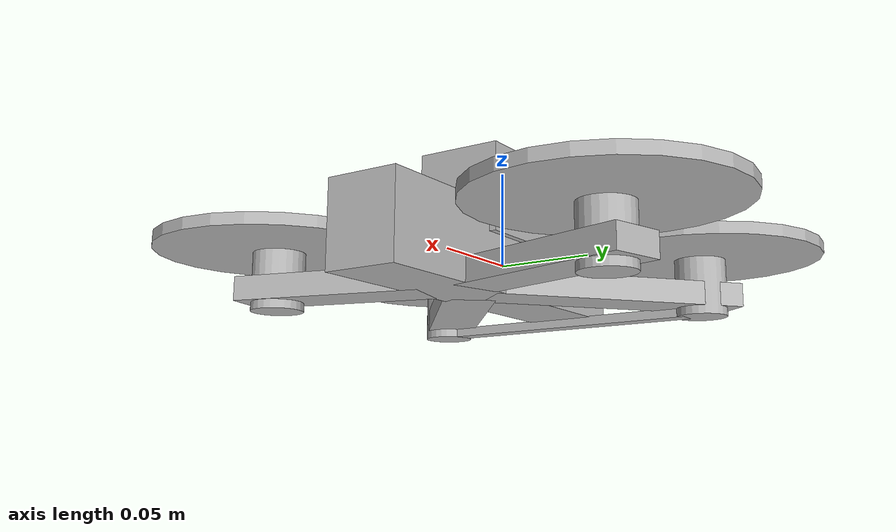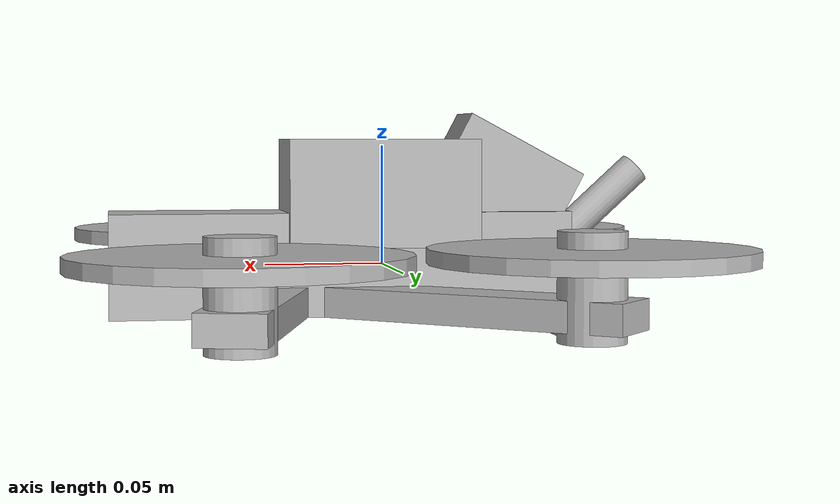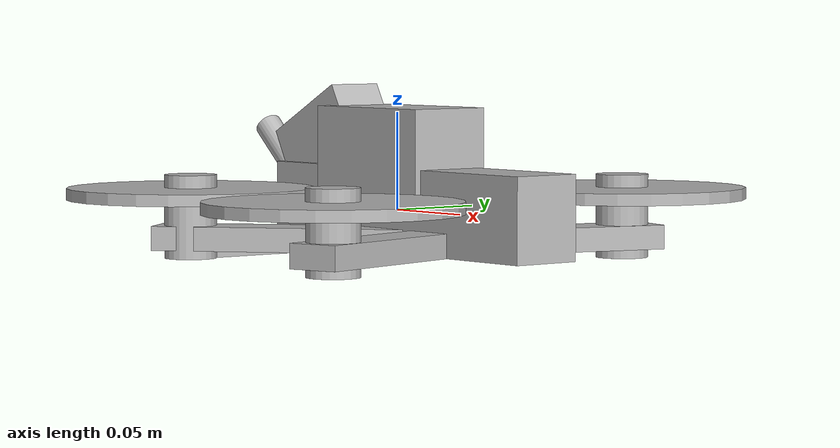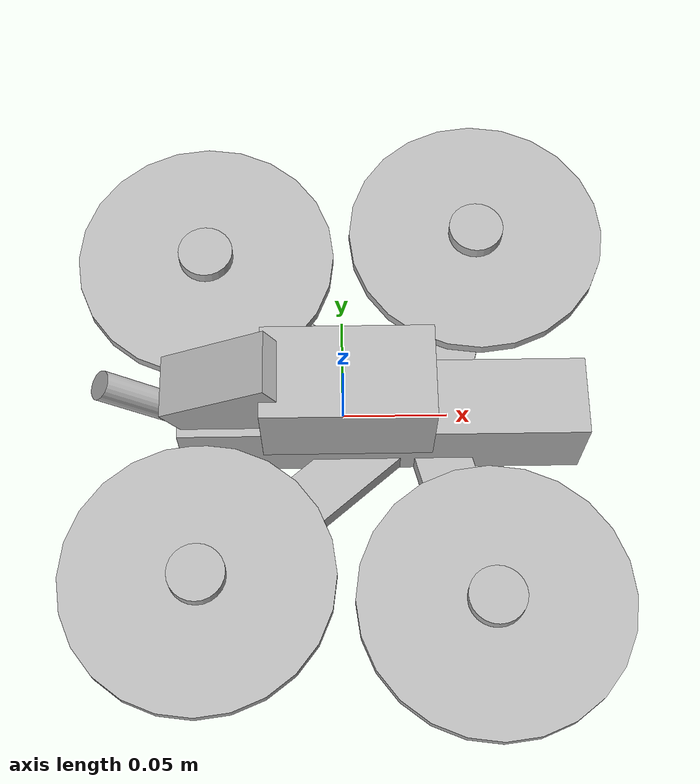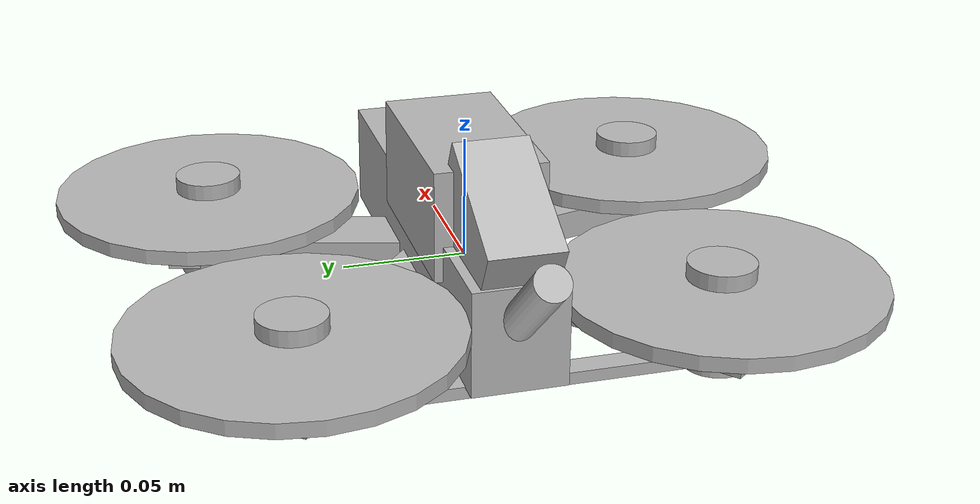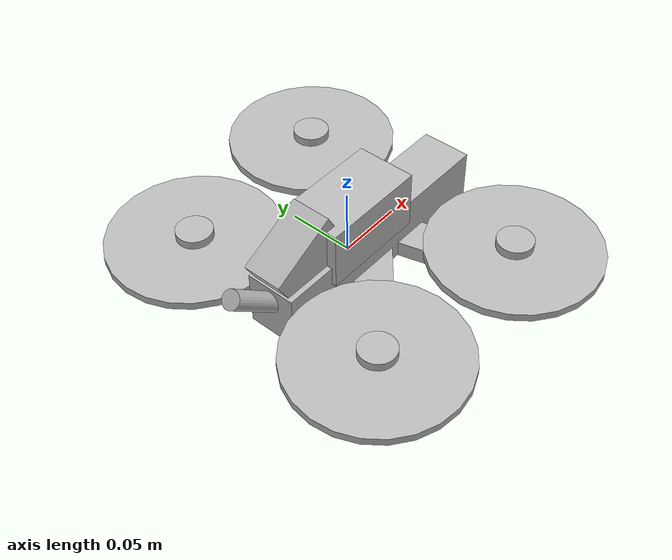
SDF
<?xml version="1.0"?>
<sdf version='1.6'>
  <model name='fpv_f5d_auton_lps'>
    <link name='base_link'>
      <inertial>
        <mass>0.68</mass>
        <inertia>
          <ixx>0.0014</ixx>
          <ixy>0</ixy>
          <ixz>0</ixz>
          <iyy>0.0017</iyy>
          <iyz>0</iyz>
          <izz>0.0026</izz>
        </inertia>
      </inertial>
      <!-- collision -->
      <collision name='base_link_unified_collision'>
        <pose>0 0 0 0 0 0</pose>
        <geometry>
          <box>
            <!-- Используем ваши точные габариты -->
            <size>0.264 0.317 0.090</size>
          </box>
        </geometry>
      </collision>
      <visual name='base_link_main_visual_1'>
        <pose>0.0185 0.0 0.001 0.0 0.0 0.0</pose>
        <geometry>
          <box>
            <size>0.193 0.038 0.043</size>
          </box>
        </geometry>
      </visual>
      <visual name='base_link_main_visual_2'>
        <pose>-0.0922 0.0 0.023 0.0 -0.83601 0.0</pose>
        <geometry>
          <cylinder>
            <length>0.052</length>
            <radius>0.007</radius>
          </cylinder>
        </geometry>
      </visual>
      <visual name='base_link_main_visual_3'>
        <pose>-0.0654 0.0 -0.0225 0.0 0.0 0.0</pose>
        <geometry>
          <box>
            <size>0.01 0.15 0.005</size>
          </box>
        </geometry>
      </visual>
      <visual name='base_link_battery_visual_1'>
        <pose>0.0018 0.0 0.0305 0.0 0.0 0.0</pose>
        <geometry>
          <box>
            <size>0.08 0.045 0.045</size>
          </box>
        </geometry>
      </visual>
      <visual name='base_link_battery_visual_2'>
        <pose>-0.0517 0.0 0.035 0.0 -0.48869 0.0</pose>
        <geometry>
          <box>
            <size>0.055 0.03 0.036</size>
          </box>
        </geometry>
      </visual>
      <visual name='base_link_arm_1_visual'>
        <pose>0.0598 -0.0626 -0.0143 0.0 0.0 -1.309</pose>
        <geometry>
          <box>
            <size>0.1 0.027 0.0124</size>
          </box>
        </geometry>
      </visual>
      <visual name='base_link_arm_2_visual'>
        <pose>-0.03 0.0495 -0.0143 0.0 0.0 -0.69813</pose>
        <geometry>
          <box>
            <size>0.135 0.027 0.0124</size>
          </box>
        </geometry>
      </visual>
      <visual name='base_link_arm_3_visual'>
        <pose>0.0598 0.0626 -0.0143 0.0 0.0 1.309</pose>
        <geometry>
          <box>
            <size>0.1 0.027 0.0124</size>
          </box>
        </geometry>
      </visual>
      <visual name='base_link_arm_4_visual'>
        <pose>-0.03 -0.0495 -0.0143 0.0 0.0 0.69813</pose>
        <geometry>
          <box>
            <size>0.135 0.027 0.0124</size>
          </box>
        </geometry>
      </visual>
      <visual name='base_link_motor_1_visual'>
        <pose>0.0677 -0.09436 -0.0035 0.0 0.0 0.0</pose>
        <geometry>
          <cylinder>
            <length>0.043</length>
            <radius>0.0135</radius>
          </cylinder>
        </geometry>
      </visual>
      <visual name='base_link_motor_2_visual'>
        <pose>-0.0677 0.08223 -0.0035 0.0 0.0 0.0</pose>
        <geometry>
          <cylinder>
            <length>0.043</length>
            <radius>0.0135</radius>
          </cylinder>
        </geometry>
      </visual>
      <visual name='base_link_motor_3_visual'>
        <pose>0.0677 0.09436 -0.0035 0.0 0.0 0.0</pose>
        <geometry>
          <cylinder>
            <length>0.043</length>
            <radius>0.0135</radius>
          </cylinder>
        </geometry>
      </visual>
      <visual name='base_link_motor_4_visual'>
        <pose>-0.0677 -0.08223 -0.0035 0.0 0.0 0.0</pose>
        <geometry>
          <cylinder>
            <length>0.043</length>
            <radius>0.0135</radius>
          </cylinder>
        </geometry>
      </visual>
      <!-- SENSORS -->
      <sensor name="collision_sensor" type="contact">
        <always_on>true</always_on>
        <update_rate>100</update_rate>
        <contact>
          <collision>base_link_unified_collision</collision>
          <topic>/contacts</topic>
        </contact>
      </sensor>

      <sensor name="imu_sensor" type="imu">
        <always_on>1</always_on>
        <update_rate>100.0</update_rate>
        <visualize>true</visualize>
        <imu>
          <angular_velocity>true</angular_velocity>
          <linear_acceleration>true</linear_acceleration>
        </imu>
        <plugin filename="gz-sim-imu-system"
          name="gz::sim::systems::Imu">
        </plugin>
      </sensor>
    </link>

    <link name="camera_link">
      <pose>0.107 0 0 0 0.349066 0</pose>
      <inertial>
        <mass>0.0001</mass>
        <inertia>
          <ixx>1e-05</ixx>
          <ixy>0</ixy>
          <ixz>0</ixz>
          <iyy>1e-05</iyy>
          <iyz>0</iyz>
          <izz>1e-05</izz>
        </inertia>
      </inertial>
      <sensor name="camera_sensor" type="camera">
        <pose>0 0 0 0 0 0</pose>
        <camera>
          <image>
            <width>640</width>
            <height>480</height>
            <format>R8G8B8</format>
          </image>
          <clip>
            <near>0.05</near>
            <far>100</far>
          </clip>
          <lens>
            <type>custom</type>
            <vfov>1.5147</vfov>
            <c1>1.0</c1>
            <f>1.0</f>
          </lens>
        </camera>

        <always_on>true</always_on>
        <update_rate>30</update_rate>
        <visualize>true</visualize>
        <topic>camera</topic>

        <plugin name="gz::sim::systems::CameraVideoRecorder"
          filename="ignition-gazebo-camera-video-recorder-system" />
      </sensor>
    </link>

    <joint name="camera_joint" type="fixed">
      <parent>base_link</parent>
      <child>camera_link</child>
      <pose>0 0 0 0 0 0</pose>
    </joint>

    <link name='blade_1'>
      <pose>0.0677 -0.09436 0.01006 0 0 0</pose>
      <inertial>
        <mass>0.004</mass>
        <inertia>
          <ixx>0.0000012</ixx>
          <ixy>0</ixy>
          <ixz>0</ixz>
          <iyy>0.0000012</iyy>
          <iyz>0</iyz>
          <izz>0.0000023</izz>
        </inertia>
      </inertial>
      <visual name='blade_1_visual'>
        <pose>0.0 0.0 -0.00165 0.0 0.0 0.0</pose>
        <geometry>
          <cylinder>
            <length>0.006</length>
            <radius>0.0637</radius>
          </cylinder>
        </geometry>
      </visual>
      <gravity>1</gravity>
      <velocity_decay/>
    </link>

    <joint name='blade_1_joint' type='revolute'>
      <child>blade_1</child>
      <parent>base_link</parent>
      <axis>
        <xyz>0 0 1</xyz>
        <limit>
          <lower>-1e+16</lower>
          <upper>1e+16</upper>
        </limit>
        <dynamics>
          <spring_reference>0</spring_reference>
          <spring_stiffness>0</spring_stiffness>
        </dynamics>
      </axis>
    </joint>

    <link name='blade_2'>
      <pose>-0.0677 0.08223 0.01006 0 0 0</pose>
      <inertial>
        <mass>0.004</mass>
        <inertia>
          <ixx>0.0000012</ixx>
          <ixy>0</ixy>
          <ixz>0</ixz>
          <iyy>0.0000012</iyy>
          <iyz>0</iyz>
          <izz>0.0000023</izz>
        </inertia>
      </inertial>
      <visual name='blade_2_visual'>
        <pose>0.0 0.0 -0.00165 0.0 0.0 0.0</pose>
        <geometry>
          <cylinder>
            <length>0.006</length>
            <radius>0.0637</radius>
          </cylinder>
        </geometry>
      </visual>
      <gravity>1</gravity>
      <velocity_decay/>
    </link>

    <joint name='blade_2_joint' type='revolute'>
      <child>blade_2</child>
      <parent>base_link</parent>
      <axis>
        <xyz>0 0 1</xyz>
        <limit>
          <lower>-1e+16</lower>
          <upper>1e+16</upper>
        </limit>
        <dynamics>
          <spring_reference>0</spring_reference>
          <spring_stiffness>0</spring_stiffness>
        </dynamics>
      </axis>
    </joint>

    <link name='blade_3'>
      <pose>0.0677 0.09436 0.01006 0 0 0</pose>
      <inertial>
        <mass>0.004</mass>
        <inertia>
          <ixx>0.0000012</ixx>
          <ixy>0</ixy>
          <ixz>0</ixz>
          <iyy>0.0000012</iyy>
          <iyz>0</iyz>
          <izz>0.0000023</izz>
        </inertia>
      </inertial>
      <visual name='blade_3_visual'>
        <pose>0.0 0.0 -0.00165 0.0 0.0 0.0</pose>
        <geometry>
          <cylinder>
            <length>0.006</length>
            <radius>0.0637</radius>
          </cylinder>
        </geometry>
      </visual>
      <gravity>1</gravity>
      <velocity_decay/>
    </link>

    <joint name='blade_3_joint' type='revolute'>
      <child>blade_3</child>
      <parent>base_link</parent>
      <axis>
        <xyz>0 0 1</xyz>
        <limit>
          <lower>-1e+16</lower>
          <upper>1e+16</upper>
        </limit>
        <dynamics>
          <spring_reference>0</spring_reference>
          <spring_stiffness>0</spring_stiffness>
        </dynamics>
      </axis>
    </joint>

    <link name='blade_4'>
      <pose>-0.0677 -0.08223 0.01006 0 0 0</pose>
      <inertial>
        <mass>0.004</mass>
        <inertia>
          <ixx>0.0000012</ixx>
          <ixy>0</ixy>
          <ixz>0</ixz>
          <iyy>0.0000012</iyy>
          <iyz>0</iyz>
          <izz>0.0000023</izz>
        </inertia>
      </inertial>
      <visual name='blade_4_visual'>
        <pose>0.0 0.0 -0.00165 0.0 0.0 0.0</pose>
        <geometry>
          <cylinder>
            <length>0.006</length>
            <radius>0.0637</radius>
          </cylinder>
        </geometry>
      </visual>
      <gravity>1</gravity>
      <velocity_decay/>
    </link>

    <joint name='blade_4_joint' type='revolute'>
      <child>blade_4</child>
      <parent>base_link</parent>
      <axis>
        <xyz>0 0 1</xyz>
        <limit>
          <lower>-1e+16</lower>
          <upper>1e+16</upper>
        </limit>
        <dynamics>
          <spring_reference>0</spring_reference>
          <spring_stiffness>0</spring_stiffness>
        </dynamics>
      </axis>
    </joint>

    <plugin filename="ignition-gazebo-multicopter-motor-model-system" name="gz::sim::systems::MulticopterMotorModel">
      <robotNamespace>fpv_f5d_auton_lps</robotNamespace>
      <jointName>blade_1_joint</jointName>
      <linkName>blade_1</linkName>
      <turningDirection>ccw</turningDirection>
      <timeConstantUp>0.0125</timeConstantUp>
      <timeConstantDown>0.025</timeConstantDown>
      <maxRotVelocity>4662</maxRotVelocity>
      <motorConstant>0.000000614</motorConstant>
      <momentConstant>0.016</momentConstant>
      <motorNumber>0</motorNumber>
      <motorSpeedPubTopic>motor_speed/0</motorSpeedPubTopic>
      <commandSubTopic>motor_speed</commandSubTopic>
      <rotorDragCoefficient>1.0e-5</rotorDragCoefficient>
      <rollingMomentCoefficient>1e-07</rollingMomentCoefficient>
      <rotorVelocitySlowdownSim>100</rotorVelocitySlowdownSim>
      <motorType>velocity</motorType>
    </plugin>

    <plugin filename="ignition-gazebo-multicopter-motor-model-system" name="gz::sim::systems::MulticopterMotorModel">
      <robotNamespace>fpv_f5d_auton_lps</robotNamespace>
      <jointName>blade_2_joint</jointName>
      <linkName>blade_2</linkName>
      <turningDirection>ccw</turningDirection>
      <timeConstantUp>0.0125</timeConstantUp>
      <timeConstantDown>0.025</timeConstantDown>
      <maxRotVelocity>4662</maxRotVelocity>
      <motorConstant>0.000000614</motorConstant>
      <momentConstant>0.016</momentConstant>
      <commandSubTopic>motor_speed</commandSubTopic>
      <motorNumber>1</motorNumber>
      <motorSpeedPubTopic>motor_speed/1</motorSpeedPubTopic>
      <rotorDragCoefficient>1.0e-5</rotorDragCoefficient>
      <rollingMomentCoefficient>1e-07</rollingMomentCoefficient>
      <rotorVelocitySlowdownSim>100</rotorVelocitySlowdownSim>
      <motorType>velocity</motorType>
    </plugin>

    <plugin filename="ignition-gazebo-multicopter-motor-model-system" name="gz::sim::systems::MulticopterMotorModel">
      <robotNamespace>fpv_f5d_auton_lps</robotNamespace>
      <jointName>blade_3_joint</jointName>
      <linkName>blade_3</linkName>
      <turningDirection>cw</turningDirection>
      <timeConstantUp>0.0125</timeConstantUp>
      <timeConstantDown>0.025</timeConstantDown>
      <maxRotVelocity>4662</maxRotVelocity>
      <motorConstant>0.000000614</motorConstant>
      <momentConstant>0.016</momentConstant>
      <commandSubTopic>motor_speed</commandSubTopic>
      <motorNumber>2</motorNumber>
      <motorSpeedPubTopic>motor_speed/2</motorSpeedPubTopic>
      <rotorDragCoefficient>1.0e-5</rotorDragCoefficient>
      <rollingMomentCoefficient>1e-07</rollingMomentCoefficient>
      <rotorVelocitySlowdownSim>100</rotorVelocitySlowdownSim>
      <motorType>velocity</motorType>
    </plugin>
    <plugin filename="ignition-gazebo-multicopter-motor-model-system" name="gz::sim::systems::MulticopterMotorModel">
      <robotNamespace>fpv_f5d_auton_lps</robotNamespace>
      <jointName>blade_4_joint</jointName>
      <linkName>blade_4</linkName>
      <turningDirection>cw</turningDirection>
      <timeConstantUp>0.0125</timeConstantUp>
      <timeConstantDown>0.025</timeConstantDown>
      <maxRotVelocity>4662</maxRotVelocity>
      <motorConstant>0.000000614</motorConstant>
      <momentConstant>0.016</momentConstant>
      <commandSubTopic>motor_speed</commandSubTopic>
      <motorNumber>3</motorNumber>
      <motorSpeedPubTopic>motor_speed/3</motorSpeedPubTopic>
      <rotorDragCoefficient>1.0e-5</rotorDragCoefficient>
      <rollingMomentCoefficient>1e-07</rollingMomentCoefficient>
      <rotorVelocitySlowdownSim>100</rotorVelocitySlowdownSim>
      <motorType>velocity</motorType>
    </plugin>
    <plugin filename="gz-sim-odometry-publisher-system" name="ignition::gazebo::systems::OdometryPublisher">
        <odom_publish_frequency>100</odom_publish_frequency>
        <dimensions>3</dimensions>
    </plugin>
  </model>
</sdf>
